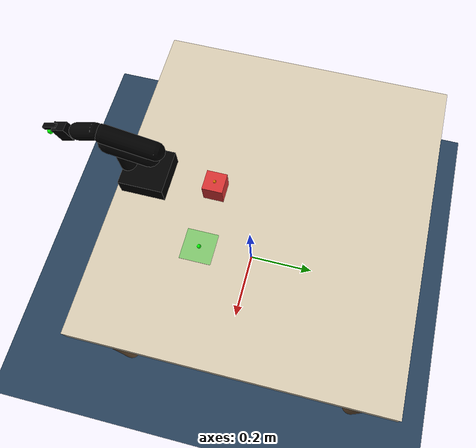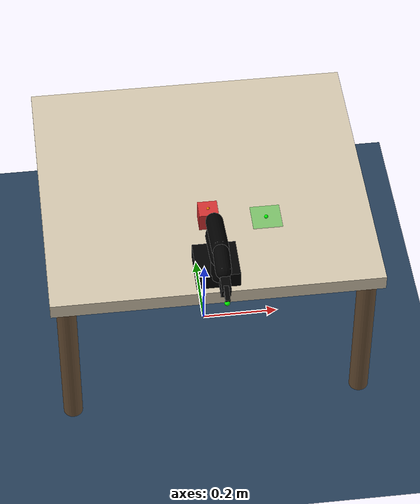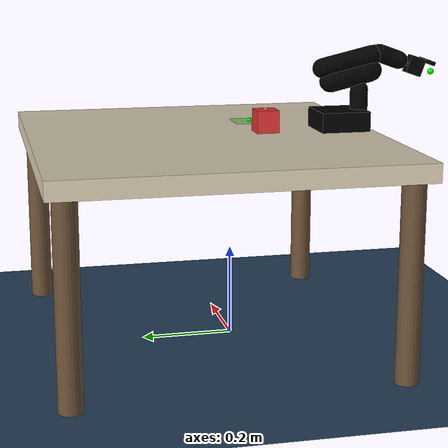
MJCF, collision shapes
<mujoco model="scene">

  <include file="so100.xml"/>

  <!-- ── Visuals ──────────────────────────────────────────────────── -->
  <visual>
    <headlight diffuse="0.6 0.6 0.6" ambient="0.3 0.3 0.3" specular="0 0 0"/>
    <rgba haze="0.15 0.25 0.35 1"/>
    <global azimuth="160" elevation="-20"/>
  </visual>

  <!-- ── Assets ───────────────────────────────────────────────────── -->
  <asset>
    <texture type="skybox" builtin="gradient"
             rgb1="0.3 0.5 0.7" rgb2="0 0 0" width="512" height="3072"/>
    <texture type="2d" name="groundplane" builtin="checker" mark="edge"
             rgb1="0.2 0.3 0.4" rgb2="0.1 0.2 0.3"
             markrgb="0.8 0.8 0.8" width="300" height="300"/>
    <material name="groundplane" texture="groundplane"
              texuniform="true" texrepeat="5 5" reflectance="0.2"/>
    <material name="table_top"  rgba="0.85 0.80 0.70 1" reflectance="0.04"/>
    <material name="table_leg"  rgba="0.40 0.30 0.20 1"/>
    <material name="block_red"  rgba="0.85 0.20 0.20 1"/>
    <material name="place_zone" rgba="0.20 0.80 0.20 0.50"/>
  </asset>

  <contact>
    <exclude body1="base"         body2="shoulder"/>
    <exclude body1="shoulder"     body2="upper_arm"/>
    <exclude body1="upper_arm"    body2="lower_arm"/>
    <exclude body1="lower_arm"    body2="wrist"/>
    <exclude body1="wrist"        body2="gripper_body"/>
    <exclude body1="gripper_body" body2="jaw"/>
    <!-- Base sits on table — exclude so it doesn't vibrate -->
    <exclude body1="base"         body2="table"/>
    <!-- Also skip non-adjacent links that can self-intersect at limits -->
    <exclude body1="base"         body2="upper_arm"/>
    <exclude body1="shoulder"     body2="lower_arm"/>
    <exclude body1="upper_arm"    body2="wrist"/>
  </contact>

  <!-- ── Worldbody ────────────────────────────────────────────────── -->
  <worldbody>

    <!-- Lights -->
    <light name="main" pos="0 0 3.5" dir="0 0 -1" directional="true"/>
    <light name="fill" pos="0.5 -0.8 2.0" dir="-0.2 0.4 -0.9" diffuse="0.3 0.3 0.3"/>

    <!-- Floor -->
    <geom name="floor" type="plane" size="0 0 0.05"
          pos="0 0 0" material="groundplane"
          contype="1" conaffinity="1"
          margin="0.001"
          friction="0.6 0.02 0.01"
          solref="0.002 1" solimp="0.995 0.999 0.0005 0.5 2"/>

    <body name="table" pos="0 0 0">
      <inertial mass="30.0" pos="0 0.06 0.23" diaginertia="2 2 1"/>

      <geom name="table_top" type="box"
            size="0.42 0.38 0.02" pos="0 0.06 0.44"
            material="table_top"
            contype="1" conaffinity="1"
        margin="0.0015"
            friction="0.5 0.02 0.01"
        solref="0.002 1" solimp="0.995 0.999 0.0005 0.5 2"/>

      <geom name="leg_fl" type="cylinder" size="0.025 0.21"
            pos=" 0.38  0.40 0.21" material="table_leg"
            contype="1" conaffinity="1"/>
      <geom name="leg_fr" type="cylinder" size="0.025 0.21"
            pos=" 0.38 -0.28 0.21" material="table_leg"
            contype="1" conaffinity="1"/>
      <geom name="leg_bl" type="cylinder" size="0.025 0.21"
            pos="-0.38  0.40 0.21" material="table_leg"
            contype="1" conaffinity="1"/>
      <geom name="leg_br" type="cylinder" size="0.025 0.21"
            pos="-0.38 -0.28 0.21" material="table_leg"
            contype="1" conaffinity="1"/>
    </body>

    <body name="block" pos="0.0 -0.08 0.485">
      <freejoint name="block_joint"/>
      <inertial mass="0.050" pos="0 0 0"
                diaginertia="5.21e-06 5.21e-06 5.21e-06"/>
      <geom name="block_geom" type="box" size="0.025 0.025 0.025"
            material="block_red"
            contype="1" conaffinity="1"
            condim="6"
        margin="0.00020"
          friction="1.3 0.02 0.005"
        solref="0.0007 1"
        solimp="0.99 0.999 0.001 0.5 2"/>
      <site name="block_centre" pos="0 0 0"    size="0.004" rgba="1 1 0 1"/>
      <site name="block_top"    pos="0 0 0.025" size="0.004" rgba="1 0.5 0 1"/>
    </body>

    <body name="place_zone" pos="0.15 -0.08 0.461">
      <inertial mass="0.001" pos="0 0 0" diaginertia="1e-7 1e-7 1e-7"/>
      <geom name="place_geom" type="box" size="0.038 0.038 0.001"
            material="place_zone"
            contype="0" conaffinity="0"/>
      <site name="place_centre" pos="0 0 0.001" size="0.005" rgba="0 1 0 1"/>
    </body>

    <!-- ══════════════════════════════════════════════════════════════
      CAMERAS
    ══════════════════════════════════════════════════════════════════ -->
    <!-- Overhead: looking straight down at the workspace -->
    <camera name="workspace_cam"
            pos="0 -0.15 1.10"
            xyaxes="1 0 0  0 0.5 0.87"
            fovy="50"/>
    <!-- Side view for debugging -->
    <camera name="side_cam"
            pos="0.70 -0.15 0.80"
            xyaxes="-0.07 1 0  -0.55 0 0.84"
            fovy="50"/>

    <!-- ══════════════════════════════════════════════════════════════
      ADD FUTURE ELEMENTS BELOW THIS LINE
    ══════════════════════════════════════════════════════════════════ -->

  </worldbody>

  <!-- ── Scene-level sensors ───────────────────────────────────────── -->
  <sensor>
    <framepos    name="block_pos"    objtype="body" objname="block"/>
    <framequat   name="block_quat"   objtype="body" objname="block"/>
    <framelinvel name="block_linvel" objtype="body" objname="block"/>
    <frameangvel name="block_angvel" objtype="body" objname="block"/>
    <framepos    name="place_pos"    objtype="site" objname="place_centre"/>
  </sensor>

</mujoco>

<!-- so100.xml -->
<mujoco model="so_arm100">

  <compiler angle="radian" meshdir="assets" autolimits="true"/>

  <option
    timestep   = "0.001"
    gravity    = "0 0 -9.81"
    integrator = "implicitfast"
    cone       = "elliptic"
    impratio   = "10"
    iterations = "120"
    noslip_iterations = "3"/>

  <default>

    <default class="arm_joint">
      <!-- NO limited="true" here — each joint sets its own range -->
      <joint type="hinge" damping="0.5" frictionloss="0.1" armature="0.01"/>
    </default>

    <!-- Visual mesh geoms — rendering only, zero collision -->
    <default class="visual">
      <geom contype="0" conaffinity="0" group="1" mass="0"/>
    </default>

    <!-- Collision proxy geoms — invisible capsules/boxes -->
    <default class="collision">
      <geom contype="1" conaffinity="1"
            condim="6"
          margin="0.0015"
            friction="0.8 0.02 0.01"
          solref="0.0012 1"
          solimp="0.99 0.999 0.001 0.5 2"
            rgba="0 0 0 0"/>
    </default>

    <!-- Gripper finger proxies — higher friction for grasping -->
    <default class="gripper_col">
      <geom contype="1" conaffinity="1"
            condim="6"
          margin="0.00010"
            friction="1.8 0.02 0.005"
            solref="0.0007 1"
          solimp="0.99 0.999 0.001 0.5 2"
            rgba="0 0 0 0"/>
    </default>

    <default class="arm_act">
      <position kp="80" kv="8" ctrllimited="true" forcelimited="true" forcerange="-8 8"/>
    </default>

  </default>

  <!-- ── Assets ────────────────────────────────────────────────────── -->
  <asset>
    <mesh name="Base"                   file="Base.stl"/>
    <mesh name="Base_Motor"             file="Base_Motor.stl"/>
    <mesh name="Rotation_Pitch"         file="Rotation_Pitch.stl"/>
    <mesh name="Rotation_Pitch_Motor"   file="Rotation_Pitch_Motor.stl"/>
    <mesh name="Upper_Arm"              file="Upper_Arm.stl"/>
    <mesh name="Upper_Arm_Motor"        file="Upper_Arm_Motor.stl"/>
    <mesh name="Lower_Arm"              file="Lower_Arm.stl"/>
    <mesh name="Lower_Arm_Motor"        file="Lower_Arm_Motor.stl"/>
    <mesh name="Wrist_Pitch_Roll"       file="Wrist_Pitch_Roll.stl"/>
    <mesh name="Wrist_Pitch_Roll_Motor" file="Wrist_Pitch_Roll_Motor.stl"/>
    <mesh name="Fixed_Jaw"              file="Fixed_Jaw.stl"/>
    <mesh name="Fixed_Jaw_Motor"        file="Fixed_Jaw_Motor.stl"/>
    <mesh name="Moving_Jaw"             file="Moving_Jaw.stl"/>

    <material name="3d_printed" rgba="1.0 0.82 0.12 1.0"/>
    <material name="sts3215"    rgba="0.1 0.1  0.1  1.0"/>
  </asset>

  <worldbody>

    <!-- ── Base: fixed to table, no joint ── -->
    <body name="base" pos="0 -0.25 0.472">
      <inertial mass="0.5" pos="0 0 0.02" diaginertia="0.002 0.002 0.002"/>
      <geom class="visual"    type="mesh" mesh="Base"       material="3d_printed"/>
      <geom class="visual"    type="mesh" mesh="Base_Motor" material="sts3215"/>
      <geom class="collision" type="box"  size="0.055 0.055 0.022" pos="0 0 0.011"/>

      <!-- ── Joint 1: shoulder_pan — yaw around world Z ──
           Body frame is rotated +90° around X by the euler below,
           so local Y → world Z. axis="0 1 0" in local = world Z = yaw. ✓ -->
      <body name="shoulder" pos="0 -0.0452 0.0165" euler="1.5708 0 0">
        <inertial mass="0.119" pos="0 0.059 0.031"
                  diaginertia="5.9e-05 5.9e-05 3.1e-05"/>
        <joint name="shoulder_pan" class="arm_joint"
               axis="0 1 0" range="-2.0 2.0"/>
        <geom class="visual"    type="mesh" mesh="Rotation_Pitch"       material="3d_printed"/>
        <geom class="visual"    type="mesh" mesh="Rotation_Pitch_Motor" material="sts3215"/>
          <geom class="collision" type="capsule" size="0.020"
            fromto="0 0.010 0  0 0.060 0"/>

        <!-- ── Joint 2: shoulder_lift ── -->
        <body name="upper_arm" pos="0 0.1025 0.0306" euler="-1.8 0 0">
          <inertial mass="0.162" pos="0 0.070 0.003"
                    diaginertia="2.1e-04 1.7e-04 7.0e-05"/>
          <joint name="shoulder_lift" class="arm_joint"
                 axis="1 0 0" range="0.0 3.5"/>
          <geom class="visual"    type="mesh" mesh="Upper_Arm"       material="3d_printed"/>
          <geom class="visual"    type="mesh" mesh="Upper_Arm_Motor" material="sts3215"/>
          <geom class="collision" type="capsule" size="0.025"
                fromto="0 0.005 0  0 0.100 0"/>

          <!-- ── Joint 3: elbow_flex ── -->
          <body name="lower_arm" pos="0 0.11257 0.028" euler="1.5708 0 0">
            <inertial mass="0.148" pos="0 0.001 0.077"
                      diaginertia="1.4e-04 1.1e-04 4.8e-05"/>
            <joint name="elbow_flex" class="arm_joint"
                   axis="1 0 0" range="-3.14158 0.0"/>
            <geom class="visual"    type="mesh" mesh="Lower_Arm"       material="3d_printed"/>
            <geom class="visual"    type="mesh" mesh="Lower_Arm_Motor" material="sts3215"/>
            <geom class="collision" type="capsule" size="0.022"
                  fromto="0 0.005 0  0 0.005 0.120"/>

            <!-- ── Joint 4: wrist_flex ── -->
            <body name="wrist" pos="0 0.0052 0.1349" euler="-1.0 0 0">
              <inertial mass="0.066" pos="-0.009 -0.035 0"
                        diaginertia="3.5e-05 2.4e-05 1.9e-05"/>
              <joint name="wrist_flex" class="arm_joint"
                     axis="1 0 0" range="-2.5 1.2"
                     damping="0.3" frictionloss="0.05"/>
              <geom class="visual"    type="mesh" mesh="Wrist_Pitch_Roll"       material="3d_printed"/>
              <geom class="visual"    type="mesh" mesh="Wrist_Pitch_Roll_Motor" material="sts3215"/>
              <geom class="collision" type="capsule" size="0.020"
                    fromto="0 0 0  0 -0.050 0"/>

              <!-- ── Joint 5: wrist_roll ── -->
              <body name="gripper_body" pos="0 -0.0601 0" euler="0 1.5708 0">
                <inertial mass="0.093" pos="0.006 -0.028 0"
                          diaginertia="5.0e-05 4.6e-05 2.7e-05"/>
                <joint name="wrist_roll" class="arm_joint"
                       axis="0 1 0" range="-3.14158 3.14158"
                       damping="0.3" frictionloss="0.05"/>
                <geom class="visual"   type="mesh" mesh="Fixed_Jaw"       material="3d_printed"/>
                <geom class="visual"   type="mesh" mesh="Fixed_Jaw_Motor" material="sts3215"/>
                <!-- Palm collision box -->
                <geom class="gripper_col" type="box"
                      size="0.020 0.018 0.012" pos="0 -0.030 0"/>
                    <!-- Fixed finger pad collision (tuned to visual jaw thickness) -->
                                <geom name="fixed_finger_col" class="gripper_col" type="box"
                                  size="0.0045 0.019 0.006" pos="0.002 -0.031 0"/>

                <!-- End-effector site (between fingers at tip) -->
                <site name="ee_site" pos="0 -0.072 0" size="0.007" rgba="0 1 0 1"/>
                    <!-- Grasp center used by IK to align jaw center with the block -->
                    <site name="grasp_center" pos="0 -0.045 0" size="0.004" rgba="0 1 1 1"/>
                    <!-- Fixed finger touch site -->
                    <site name="finger_tip_l" pos="0.002 -0.045 0" size="0.004" rgba="1 0 0 1"/>

                <!-- ── Joint 6: gripper jaw ── -->
                <body name="jaw" pos="-0.0202 -0.0244 0" euler="0 3.14158 0">
                  <inertial mass="0.020" pos="-0.002 -0.030 0"
                            diaginertia="1.1e-05 9.0e-06 3.0e-06"/>
                  <joint name="gripper_jaw" class="arm_joint"
                         axis="0 0 1" range="-0.2 2.0"
                         damping="0.2" frictionloss="0.05"/>
                  <geom class="visual"      type="mesh" mesh="Moving_Jaw" material="3d_printed"/>
                  <!-- Moving finger pad collision (mirrors fixed jaw pad) -->
                  <geom name="moving_finger_col" class="gripper_col" type="box"
                    size="0.0045 0.019 0.006" pos="-0.002 -0.031 0"/>
                  <!-- Moving finger touch site -->
                  <site name="finger_tip_r" pos="-0.002 -0.045 0" size="0.004" rgba="0 0 1 1"/>
                </body>

              </body>
            </body>
          </body>
        </body>
      </body>
    </body>

  </worldbody>

  <!-- ── Actuators ──────────────────────────────────────────────────── -->
  <actuator>
    <position name="shoulder_pan"  joint="shoulder_pan"  class="arm_act" ctrlrange="-2.0 2.0"/>
    <position name="shoulder_lift" joint="shoulder_lift" class="arm_act" ctrlrange="0.0 3.5"/>
    <position name="elbow_flex"    joint="elbow_flex"    class="arm_act" ctrlrange="-3.14158 0.0"/>
    <position name="wrist_flex"    joint="wrist_flex"    class="arm_act" kp="40" kv="5" ctrlrange="-2.5 1.2"/>
    <position name="wrist_roll"    joint="wrist_roll"    class="arm_act" kp="40" kv="5" ctrlrange="-3.14158 3.14158"/>
    <position name="gripper_jaw"   joint="gripper_jaw"   class="arm_act" kp="35" kv="10" forcerange="-6 6" ctrlrange="-0.2 2.0"/>
  </actuator>

  <!-- ── Sensors ────────────────────────────────────────────────────── -->
  <sensor>
    <jointpos name="qpos_shoulder_pan"  joint="shoulder_pan"/>
    <jointpos name="qpos_shoulder_lift" joint="shoulder_lift"/>
    <jointpos name="qpos_elbow_flex"    joint="elbow_flex"/>
    <jointpos name="qpos_wrist_flex"    joint="wrist_flex"/>
    <jointpos name="qpos_wrist_roll"    joint="wrist_roll"/>
    <jointpos name="qpos_gripper"       joint="gripper_jaw"/>

    <jointvel name="qvel_shoulder_pan"  joint="shoulder_pan"/>
    <jointvel name="qvel_shoulder_lift" joint="shoulder_lift"/>
    <jointvel name="qvel_elbow_flex"    joint="elbow_flex"/>
    <jointvel name="qvel_wrist_flex"    joint="wrist_flex"/>
    <jointvel name="qvel_wrist_roll"    joint="wrist_roll"/>
    <jointvel name="qvel_gripper"       joint="gripper_jaw"/>

    <actuatorfrc name="frc_shoulder_pan"  actuator="shoulder_pan"/>
    <actuatorfrc name="frc_shoulder_lift" actuator="shoulder_lift"/>
    <actuatorfrc name="frc_elbow_flex"    actuator="elbow_flex"/>
    <actuatorfrc name="frc_wrist_flex"    actuator="wrist_flex"/>
    <actuatorfrc name="frc_wrist_roll"    actuator="wrist_roll"/>
    <actuatorfrc name="frc_gripper"       actuator="gripper_jaw"/>

    <framepos  name="ee_pos"  objtype="site" objname="ee_site"/>
    <framequat name="ee_quat" objtype="site" objname="ee_site"/>

    <touch name="touch_finger_l" site="finger_tip_l"/>
    <touch name="touch_finger_r" site="finger_tip_r"/>
  </sensor>

</mujoco>
